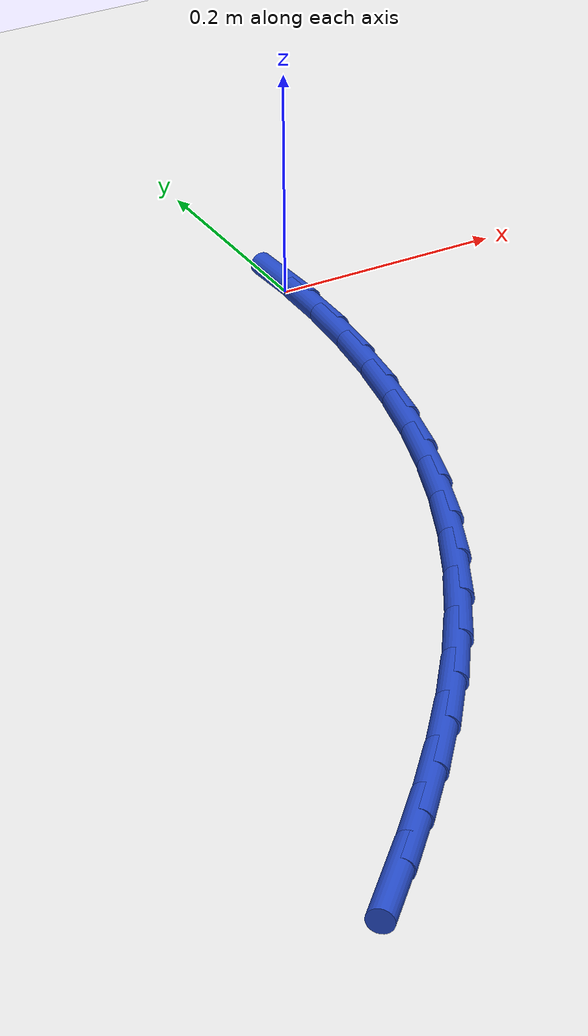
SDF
<sdf version="1.6">
 <world name="default">
  <model name="ground_plane">
   <static>1</static>
   <link name="link">
    <collision name="collision">
     <geometry><plane><normal>0 0 1</normal><size>100 100</size></plane></geometry>
     <surface><friction><ode><mu>100</mu><mu2>50</mu2></ode></friction></surface>
    </collision>
    <visual name="visual">
     <cast_shadows>0</cast_shadows>
     <geometry><plane><normal>0 0 1</normal><size>100 100</size></plane></geometry>
     <material>
      <script><uri>file://media/materials/scripts/gazebo.material</uri><name>Gazebo/WhiteGlow</name></script>
     </material>
    </visual>
   </link>
  </model>
  <model name="line">
   <link name="link_0">
    <pose>-5.204170427930421e-17 -6.938893903907228e-17 0.01 0 1.57 -1.5257831214846944</pose>
    <collision name="collision">
     <geometry><cylinder><radius>0.01</radius><length>0.08</length></cylinder></geometry>
    </collision>
    <visual name="visual">
     <material>
      <script><name>Gazebo/Blue</name><uri>file://media/materials/scripts/gazebo.material</uri></script>
     </material>
     <geometry><cylinder><radius>0.01</radius><length>0.08</length></cylinder></geometry>
    </visual>
   </link>
   <link name="link_124">
    <pose>-0.32591581624302896 -0.7315600712957365 0.01 0 1.57 0.8066712095513627</pose>
    <collision name="collision">
     <geometry><cylinder><radius>0.01</radius><length>0.08</length></cylinder></geometry>
    </collision>
    <visual name="visual">
     <material>
      <script><name>Gazebo/Blue</name><uri>file://media/materials/scripts/gazebo.material</uri></script>
     </material>
     <geometry><cylinder><radius>0.01</radius><length>0.08</length></cylinder></geometry>
    </visual>
   </link>
   <link name="link_125">
    <pose>-0.2903519156632076 -0.6944499394170756 0.01 0 1.57 0.832900157209378</pose>
    <collision name="collision">
     <geometry><cylinder><radius>0.01</radius><length>0.08</length></cylinder></geometry>
    </collision>
    <visual name="visual">
     <material>
      <script><name>Gazebo/Blue</name><uri>file://media/materials/scripts/gazebo.material</uri></script>
     </material>
     <geometry><cylinder><radius>0.01</radius><length>0.08</length></cylinder></geometry>
    </visual>
   </link>
   <link name="link_126">
    <pose>-0.2556864904507143 -0.6563241849729439 0.01 0 1.57 0.864398700208942</pose>
    <collision name="collision">
     <geometry><cylinder><radius>0.01</radius><length>0.08</length></cylinder></geometry>
    </collision>
    <visual name="visual">
     <material>
      <script><name>Gazebo/Blue</name><uri>file://media/materials/scripts/gazebo.material</uri></script>
     </material>
     <geometry><cylinder><radius>0.01</radius><length>0.08</length></cylinder></geometry>
    </visual>
   </link>
   <link name="link_127">
    <pose>-0.22221777323751804 -0.6171007737638614 0.01 0 1.57 0.9013401782755388</pose>
    <collision name="collision">
     <geometry><cylinder><radius>0.01</radius><length>0.08</length></cylinder></geometry>
    </collision>
    <visual name="visual">
     <material>
      <script><name>Gazebo/Blue</name><uri>file://media/materials/scripts/gazebo.material</uri></script>
     </material>
     <geometry><cylinder><radius>0.01</radius><length>0.08</length></cylinder></geometry>
    </visual>
   </link>
   <link name="link_128">
    <pose>-0.19024399665558614 -0.5766976715903464 0.01 0 1.57 0.9439035280473206</pose>
    <collision name="collision">
     <geometry><cylinder><radius>0.01</radius><length>0.08</length></cylinder></geometry>
    </collision>
    <visual name="visual">
     <material>
      <script><name>Gazebo/Blue</name><uri>file://media/materials/scripts/gazebo.material</uri></script>
     </material>
     <geometry><cylinder><radius>0.01</radius><length>0.08</length></cylinder></geometry>
    </visual>
   </link>
   <link name="link_129">
    <pose>-0.16006339333688668 -0.5350328442529176 0.01 0 1.57 0.992240212659779</pose>
    <collision name="collision">
     <geometry><cylinder><radius>0.01</radius><length>0.08</length></cylinder></geometry>
    </collision>
    <visual name="visual">
     <material>
      <script><name>Gazebo/Blue</name><uri>file://media/materials/scripts/gazebo.material</uri></script>
     </material>
     <geometry><cylinder><radius>0.01</radius><length>0.08</length></cylinder></geometry>
    </visual>
   </link>
   <link name="link_130">
    <pose>-0.13197419591338758 -0.49202425755209395 0.01 0 1.57 1.0464323085878837</pose>
    <collision name="collision">
     <geometry><cylinder><radius>0.01</radius><length>0.08</length></cylinder></geometry>
    </collision>
    <visual name="visual">
     <material>
      <script><name>Gazebo/Blue</name><uri>file://media/materials/scripts/gazebo.material</uri></script>
     </material>
     <geometry><cylinder><radius>0.01</radius><length>0.08</length></cylinder></geometry>
    </visual>
   </link>
   <link name="link_131">
    <pose>-0.10627463701705636 -0.44758987728839367 0.01 0 1.57 1.1060215687128254</pose>
    <collision name="collision">
     <geometry><cylinder><radius>0.01</radius><length>0.08</length></cylinder></geometry>
    </collision>
    <visual name="visual">
     <material>
      <script><name>Gazebo/Blue</name><uri>file://media/materials/scripts/gazebo.material</uri></script>
     </material>
     <geometry><cylinder><radius>0.01</radius><length>0.08</length></cylinder></geometry>
    </visual>
   </link>
   <link name="link_132">
    <pose>-0.08324654841053739 -0.40166318866887485 0.01 0 1.57 1.1665580985657913</pose>
    <collision name="collision">
     <geometry><cylinder><radius>0.01</radius><length>0.08</length></cylinder></geometry>
    </collision>
    <visual name="visual">
     <material>
      <script><name>Gazebo/Blue</name><uri>file://media/materials/scripts/gazebo.material</uri></script>
     </material>
     <geometry><cylinder><radius>0.01</radius><length>0.08</length></cylinder></geometry>
    </visual>
   </link>
   <link name="link_133">
    <pose>-0.06300133080298442 -0.3543389481572277 0.01 0 1.57 1.2255929875463971</pose>
    <collision name="collision">
     <geometry><cylinder><radius>0.01</radius><length>0.08</length></cylinder></geometry>
    </collision>
    <visual name="visual">
     <material>
      <script><name>Gazebo/Blue</name><uri>file://media/materials/scripts/gazebo.material</uri></script>
     </material>
     <geometry><cylinder><radius>0.01</radius><length>0.08</length></cylinder></geometry>
    </visual>
   </link>
   <link name="link_134">
    <pose>-0.04554933015483931 -0.305807535790312 0.01 0 1.57 1.283312697145566</pose>
    <collision name="collision">
     <geometry><cylinder><radius>0.01</radius><length>0.08</length></cylinder></geometry>
    </collision>
    <visual name="visual">
     <material>
      <script><name>Gazebo/Blue</name><uri>file://media/materials/scripts/gazebo.material</uri></script>
     </material>
     <geometry><cylinder><radius>0.01</radius><length>0.08</length></cylinder></geometry>
    </visual>
   </link>
   <link name="link_135">
    <pose>-0.030899566423003053 -0.25626058634262405 0.01 0 1.57 1.3399588419820407</pose>
    <collision name="collision">
     <geometry><cylinder><radius>0.01</radius><length>0.08</length></cylinder></geometry>
    </collision>
    <visual name="visual">
     <material>
      <script><name>Gazebo/Blue</name><uri>file://media/materials/scripts/gazebo.material</uri></script>
     </material>
     <geometry><cylinder><radius>0.01</radius><length>0.08</length></cylinder></geometry>
    </visual>
   </link>
   <link name="link_136">
    <pose>-0.01906105956437727 -0.20588973458866197 0.01 0 1.57 1.3957879796803694</pose>
    <collision name="collision">
     <geometry><cylinder><radius>0.01</radius><length>0.08</length></cylinder></geometry>
    </collision>
    <visual name="visual">
     <material>
      <script><name>Gazebo/Blue</name><uri>file://media/materials/scripts/gazebo.material</uri></script>
     </material>
     <geometry><cylinder><radius>0.01</radius><length>0.08</length></cylinder></geometry>
    </visual>
   </link>
   <link name="link_137">
    <pose>-0.010042829535862888 -0.1548866153029218 0.01 0 1.57 1.4510668820850021</pose>
    <collision name="collision">
     <geometry><cylinder><radius>0.01</radius><length>0.08</length></cylinder></geometry>
    </collision>
    <visual name="visual">
     <material>
      <script><name>Gazebo/Blue</name><uri>file://media/materials/scripts/gazebo.material</uri></script>
     </material>
     <geometry><cylinder><radius>0.01</radius><length>0.08</length></cylinder></geometry>
    </visual>
   </link>
   <link name="link_138">
    <pose>-0.0038538962943611135 -0.10344286325990043 0.01 0 1.57 1.5060689539201368</pose>
    <collision name="collision">
     <geometry><cylinder><radius>0.01</radius><length>0.08</length></cylinder></geometry>
    </collision>
    <visual name="visual">
     <material>
      <script><name>Gazebo/Blue</name><uri>file://media/materials/scripts/gazebo.material</uri></script>
     </material>
     <geometry><cylinder><radius>0.01</radius><length>0.08</length></cylinder></geometry>
    </visual>
   </link>
   <link name="link_139">
    <pose>-0.0005032797967731012 -0.05175011323409447 0.01 0 1.57 1.561071441193791</pose>
    <collision name="collision">
     <geometry><cylinder><radius>0.01</radius><length>0.08</length></cylinder></geometry>
    </collision>
    <visual name="visual">
     <material>
      <script><name>Gazebo/Blue</name><uri>file://media/materials/scripts/gazebo.material</uri></script>
     </material>
     <geometry><cylinder><radius>0.01</radius><length>0.08</length></cylinder></geometry>
    </visual>
   </link>
  </model>
 </world>
</sdf>
